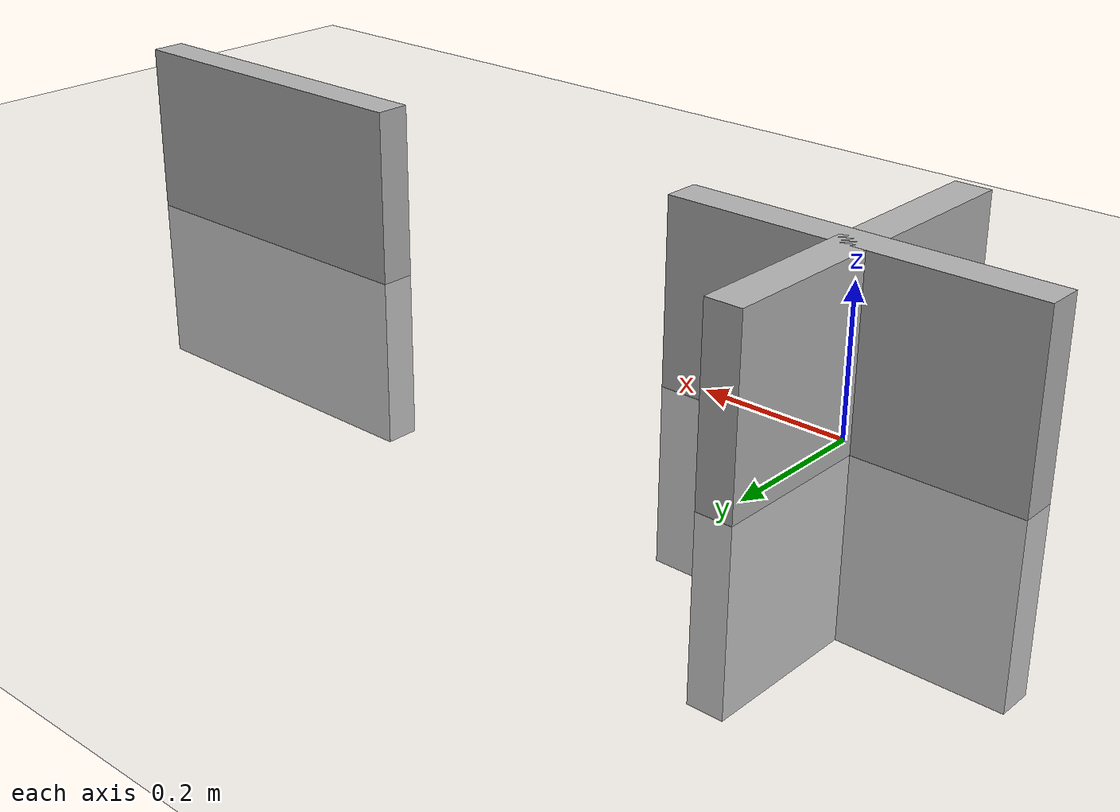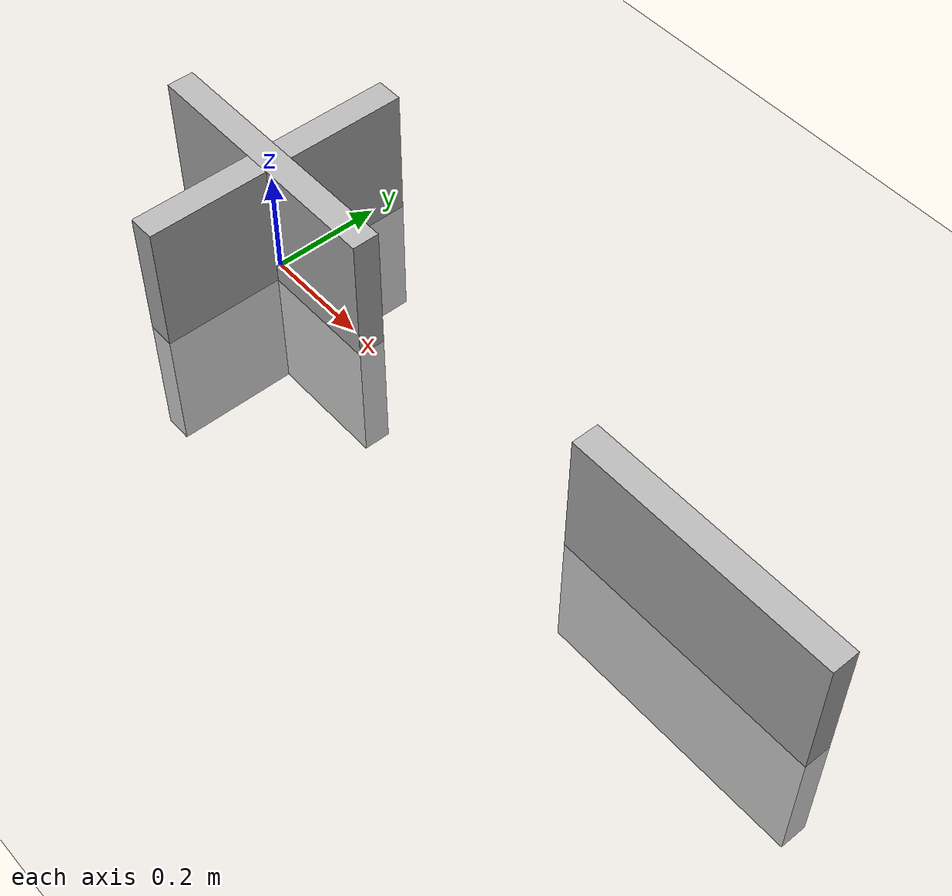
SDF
<?xml version="1.0" ?>
<sdf version="1.6">
  <world name="tb3_maze_world">
    <include><uri>model://sun</uri></include>
    <include><uri>model://ground_plane</uri></include>

    <!-- Example segments; duplicate & move by changing pose x y yaw -->
    <include><uri>model://wall_050m</uri><name>h0</name><pose>0 0 0 0 0 0</pose></include>
    <include><uri>model://wall_050m</uri><name>h1</name><pose>1.0 0 0 0 0 0</pose></include>
    <include><uri>model://wall_050m</uri><name>v0</name><pose>0 0 0 0 0 1.5708</pose></include>

    <plugin name="gazebo_ros_state" filename="libgazebo_ros_init.so"/>
    <plugin name="gazebo_ros_factory" filename="libgazebo_ros_factory.so"/>
  </world>
</sdf>

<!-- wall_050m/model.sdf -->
<sdf version="1.6">
  <model name="wall_050m">
    <static>true</static>
    <link name="link">
      <collision name="collision">
        <geometry><box><size>0.5 0.05 0.5</size></box></geometry>
      </collision>
      <visual name="visual">
        <geometry><box><size>0.5 0.05 0.5</size></box></geometry>
        <material><ambient>0.7 0.7 0.7 1</ambient></material>
      </visual>
    </link>
  </model>
</sdf>
